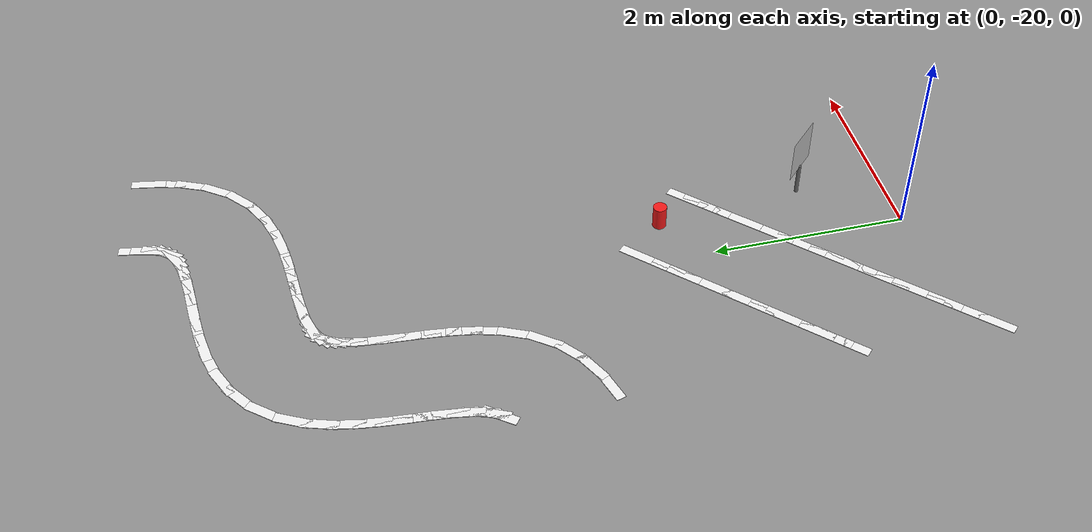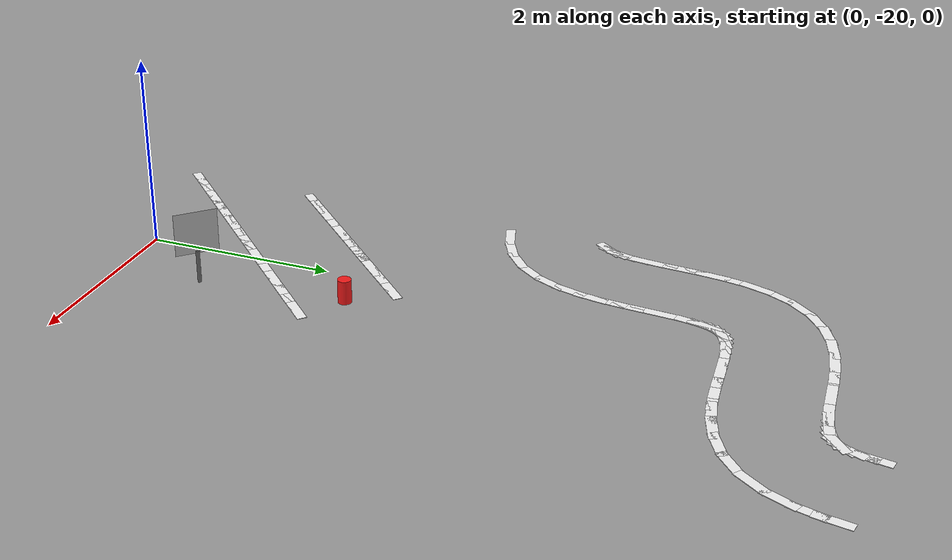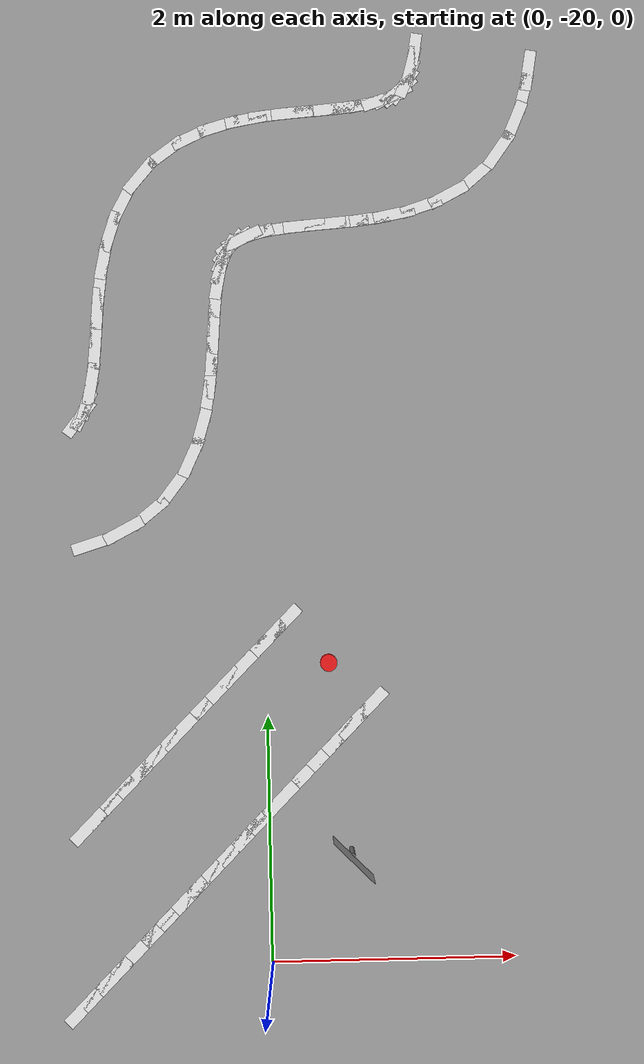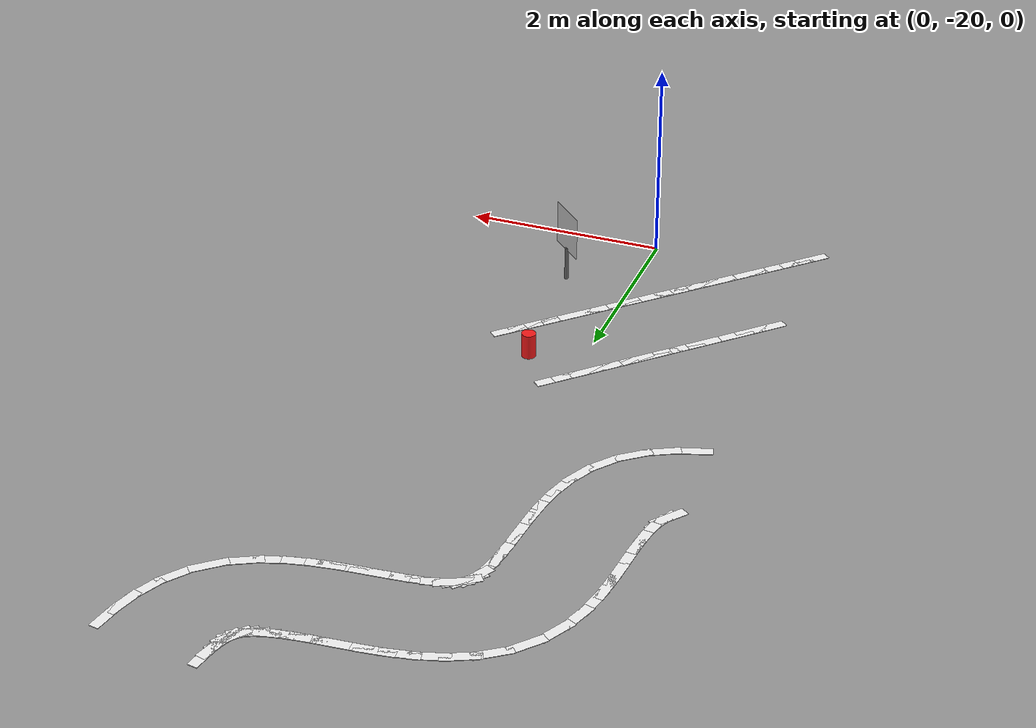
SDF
<sdf version="1.7">
 <world name="cone_lane">
  <model name="ground_plane">
   <static>true</static>
   <link name="link">
    <collision name="collision">
     <geometry><plane><normal>0 0 1</normal><size>150 150</size></plane></geometry>
     <surface><friction><ode><mu>1.0</mu></ode></friction></surface>
    </collision>
   </link>
  </model>
  <model name="line_L149">
   <static>true</static>
   <pose>2.367 -12.498 0.0030 0 0 -1.7463</pose>
   <link name="link">
    <visual name="v">
     <geometry><box><size>0.360 0.100 0.005</size></box></geometry>
     <material>
      <ambient>0.85 0.85 0.85 1</ambient>
      <diffuse>0.95 0.95 0.95 1</diffuse>
      <specular>0.1 0.1 0.1 1</specular>
      <emissive>0.7 0.7 0.7 1</emissive>
     </material>
    </visual>
   </link>
  </model>
  <model name="line_L150">
   <static>true</static>
   <pose>2.321 -12.705 0.0030 0 0 -1.8372</pose>
   <link name="link">
    <visual name="v">
     <geometry><box><size>0.360 0.100 0.005</size></box></geometry>
     <material>
      <ambient>0.85 0.85 0.85 1</ambient>
      <diffuse>0.95 0.95 0.95 1</diffuse>
      <specular>0.1 0.1 0.1 1</specular>
      <emissive>0.7 0.7 0.7 1</emissive>
     </material>
    </visual>
   </link>
  </model>
  <model name="line_L151">
   <static>true</static>
   <pose>2.239 -12.941 0.0030 0 0 -1.9825</pose>
   <link name="link">
    <visual name="v">
     <geometry><box><size>0.360 0.100 0.005</size></box></geometry>
     <material>
      <ambient>0.85 0.85 0.85 1</ambient>
      <diffuse>0.95 0.95 0.95 1</diffuse>
      <specular>0.1 0.1 0.1 1</specular>
      <emissive>0.7 0.7 0.7 1</emissive>
     </material>
    </visual>
   </link>
  </model>
  <model name="line_L152">
   <static>true</static>
   <pose>2.094 -13.196 0.0030 0 0 -2.1957</pose>
   <link name="link">
    <visual name="v">
     <geometry><box><size>0.360 0.100 0.005</size></box></geometry>
     <material>
      <ambient>0.85 0.85 0.85 1</ambient>
      <diffuse>0.95 0.95 0.95 1</diffuse>
      <specular>0.1 0.1 0.1 1</specular>
      <emissive>0.7 0.7 0.7 1</emissive>
     </material>
    </visual>
   </link>
  </model>
  <model name="line_L153">
   <static>true</static>
   <pose>1.890 -13.417 0.0030 0 0 -2.4373</pose>
   <link name="link">
    <visual name="v">
     <geometry><box><size>0.360 0.100 0.005</size></box></geometry>
     <material>
      <ambient>0.85 0.85 0.85 1</ambient>
      <diffuse>0.95 0.95 0.95 1</diffuse>
      <specular>0.1 0.1 0.1 1</specular>
      <emissive>0.7 0.7 0.7 1</emissive>
     </material>
    </visual>
   </link>
  </model>
  <model name="line_L154">
   <static>true</static>
   <pose>1.644 -13.582 0.0030 0 0 -2.6641</pose>
   <link name="link">
    <visual name="v">
     <geometry><box><size>0.360 0.100 0.005</size></box></geometry>
     <material>
      <ambient>0.85 0.85 0.85 1</ambient>
      <diffuse>0.95 0.95 0.95 1</diffuse>
      <specular>0.1 0.1 0.1 1</specular>
      <emissive>0.7 0.7 0.7 1</emissive>
     </material>
    </visual>
   </link>
  </model>
  <model name="line_L155">
   <static>true</static>
   <pose>1.409 -13.679 0.0030 0 0 -2.8260</pose>
   <link name="link">
    <visual name="v">
     <geometry><box><size>0.360 0.100 0.005</size></box></geometry>
     <material>
      <ambient>0.85 0.85 0.85 1</ambient>
      <diffuse>0.95 0.95 0.95 1</diffuse>
      <specular>0.1 0.1 0.1 1</specular>
      <emissive>0.7 0.7 0.7 1</emissive>
     </material>
    </visual>
   </link>
  </model>
  <model name="line_L156">
   <static>true</static>
   <pose>1.172 -13.741 0.0030 0 0 -2.9434</pose>
   <link name="link">
    <visual name="v">
     <geometry><box><size>0.360 0.100 0.005</size></box></geometry>
     <material>
      <ambient>0.85 0.85 0.85 1</ambient>
      <diffuse>0.95 0.95 0.95 1</diffuse>
      <specular>0.1 0.1 0.1 1</specular>
      <emissive>0.7 0.7 0.7 1</emissive>
     </material>
    </visual>
   </link>
  </model>
  <model name="line_L157">
   <static>true</static>
   <pose>0.968 -13.774 0.0030 0 0 -3.0122</pose>
   <link name="link">
    <visual name="v">
     <geometry><box><size>0.360 0.100 0.005</size></box></geometry>
     <material>
      <ambient>0.85 0.85 0.85 1</ambient>
      <diffuse>0.95 0.95 0.95 1</diffuse>
      <specular>0.1 0.1 0.1 1</specular>
      <emissive>0.7 0.7 0.7 1</emissive>
     </material>
    </visual>
   </link>
  </model>
  <model name="line_L158">
   <static>true</static>
   <pose>0.769 -13.795 0.0030 0 0 -3.0529</pose>
   <link name="link">
    <visual name="v">
     <geometry><box><size>0.360 0.100 0.005</size></box></geometry>
     <material>
      <ambient>0.85 0.85 0.85 1</ambient>
      <diffuse>0.95 0.95 0.95 1</diffuse>
      <specular>0.1 0.1 0.1 1</specular>
      <emissive>0.7 0.7 0.7 1</emissive>
     </material>
    </visual>
   </link>
  </model>
  <model name="line_L159">
   <static>true</static>
   <pose>0.578 -13.810 0.0030 0 0 -3.0684</pose>
   <link name="link">
    <visual name="v">
     <geometry><box><size>0.360 0.100 0.005</size></box></geometry>
     <material>
      <ambient>0.85 0.85 0.85 1</ambient>
      <diffuse>0.95 0.95 0.95 1</diffuse>
      <specular>0.1 0.1 0.1 1</specular>
      <emissive>0.7 0.7 0.7 1</emissive>
     </material>
    </visual>
   </link>
  </model>
  <model name="line_L160">
   <static>true</static>
   <pose>0.398 -13.824 0.0030 0 0 -3.0598</pose>
   <link name="link">
    <visual name="v">
     <geometry><box><size>0.360 0.100 0.005</size></box></geometry>
     <material>
      <ambient>0.85 0.85 0.85 1</ambient>
      <diffuse>0.95 0.95 0.95 1</diffuse>
      <specular>0.1 0.1 0.1 1</specular>
      <emissive>0.7 0.7 0.7 1</emissive>
     </material>
    </visual>
   </link>
  </model>
  <model name="line_L161">
   <static>true</static>
   <pose>0.234 -13.840 0.0030 0 0 -3.0265</pose>
   <link name="link">
    <visual name="v">
     <geometry><box><size>0.360 0.100 0.005</size></box></geometry>
     <material>
      <ambient>0.85 0.85 0.85 1</ambient>
      <diffuse>0.95 0.95 0.95 1</diffuse>
      <specular>0.1 0.1 0.1 1</specular>
      <emissive>0.7 0.7 0.7 1</emissive>
     </material>
    </visual>
   </link>
  </model>
  <model name="line_L162">
   <static>true</static>
   <pose>0.091 -13.860 0.0030 0 0 -2.9661</pose>
   <link name="link">
    <visual name="v">
     <geometry><box><size>0.360 0.100 0.005</size></box></geometry>
     <material>
      <ambient>0.85 0.85 0.85 1</ambient>
      <diffuse>0.95 0.95 0.95 1</diffuse>
      <specular>0.1 0.1 0.1 1</specular>
      <emissive>0.7 0.7 0.7 1</emissive>
     </material>
    </visual>
   </link>
  </model>
  <model name="line_L163">
   <static>true</static>
   <pose>-0.042 -13.890 0.0030 0 0 -2.8595</pose>
   <link name="link">
    <visual name="v">
     <geometry><box><size>0.360 0.100 0.005</size></box></geometry>
     <material>
      <ambient>0.85 0.85 0.85 1</ambient>
      <diffuse>0.95 0.95 0.95 1</diffuse>
      <specular>0.1 0.1 0.1 1</specular>
      <emissive>0.7 0.7 0.7 1</emissive>
     </material>
    </visual>
   </link>
  </model>
  <model name="line_L164">
   <static>true</static>
   <pose>-0.137 -13.925 0.0030 0 0 -2.7086</pose>
   <link name="link">
    <visual name="v">
     <geometry><box><size>0.360 0.100 0.005</size></box></geometry>
     <material>
      <ambient>0.85 0.85 0.85 1</ambient>
      <diffuse>0.95 0.95 0.95 1</diffuse>
      <specular>0.1 0.1 0.1 1</specular>
      <emissive>0.7 0.7 0.7 1</emissive>
     </material>
    </visual>
   </link>
  </model>
  <model name="line_L165">
   <static>true</static>
   <pose>-0.197 -13.959 0.0030 0 0 -2.5167</pose>
   <link name="link">
    <visual name="v">
     <geometry><box><size>0.360 0.100 0.005</size></box></geometry>
     <material>
      <ambient>0.85 0.85 0.85 1</ambient>
      <diffuse>0.95 0.95 0.95 1</diffuse>
      <specular>0.1 0.1 0.1 1</specular>
      <emissive>0.7 0.7 0.7 1</emissive>
     </material>
    </visual>
   </link>
  </model>
  <model name="line_L166">
   <static>true</static>
   <pose>-0.241 -14.000 0.0030 0 0 -2.2751</pose>
   <link name="link">
    <visual name="v">
     <geometry><box><size>0.360 0.100 0.005</size></box></geometry>
     <material>
      <ambient>0.85 0.85 0.85 1</ambient>
      <diffuse>0.95 0.95 0.95 1</diffuse>
      <specular>0.1 0.1 0.1 1</specular>
      <emissive>0.7 0.7 0.7 1</emissive>
     </material>
    </visual>
   </link>
  </model>
  <model name="line_L167">
   <static>true</static>
   <pose>-0.280 -14.059 0.0030 0 0 -2.0483</pose>
   <link name="link">
    <visual name="v">
     <geometry><box><size>0.360 0.100 0.005</size></box></geometry>
     <material>
      <ambient>0.85 0.85 0.85 1</ambient>
      <diffuse>0.95 0.95 0.95 1</diffuse>
      <specular>0.1 0.1 0.1 1</specular>
      <emissive>0.7 0.7 0.7 1</emissive>
     </material>
    </visual>
   </link>
  </model>
  <model name="line_L168">
   <static>true</static>
   <pose>-0.315 -14.144 0.0030 0 0 -1.8864</pose>
   <link name="link">
    <visual name="v">
     <geometry><box><size>0.360 0.100 0.005</size></box></geometry>
     <material>
      <ambient>0.85 0.85 0.85 1</ambient>
      <diffuse>0.95 0.95 0.95 1</diffuse>
      <specular>0.1 0.1 0.1 1</specular>
      <emissive>0.7 0.7 0.7 1</emissive>
     </material>
    </visual>
   </link>
  </model>
  <model name="line_L169">
   <static>true</static>
   <pose>-0.346 -14.267 0.0030 0 0 -1.7690</pose>
   <link name="link">
    <visual name="v">
     <geometry><box><size>0.360 0.100 0.005</size></box></geometry>
     <material>
      <ambient>0.85 0.85 0.85 1</ambient>
      <diffuse>0.95 0.95 0.95 1</diffuse>
      <specular>0.1 0.1 0.1 1</specular>
      <emissive>0.7 0.7 0.7 1</emissive>
     </material>
    </visual>
   </link>
  </model>
  <model name="line_L170">
   <static>true</static>
   <pose>-0.371 -14.425 0.0030 0 0 -1.6928</pose>
   <link name="link">
    <visual name="v">
     <geometry><box><size>0.360 0.100 0.005</size></box></geometry>
     <material>
      <ambient>0.85 0.85 0.85 1</ambient>
      <diffuse>0.95 0.95 0.95 1</diffuse>
      <specular>0.1 0.1 0.1 1</specular>
      <emissive>0.7 0.7 0.7 1</emissive>
     </material>
    </visual>
   </link>
  </model>
  <model name="line_L171">
   <static>true</static>
   <pose>-0.387 -14.587 0.0030 0 0 -1.6558</pose>
   <link name="link">
    <visual name="v">
     <geometry><box><size>0.360 0.100 0.005</size></box></geometry>
     <material>
      <ambient>0.85 0.85 0.85 1</ambient>
      <diffuse>0.95 0.95 0.95 1</diffuse>
      <specular>0.1 0.1 0.1 1</specular>
      <emissive>0.7 0.7 0.7 1</emissive>
     </material>
    </visual>
   </link>
  </model>
  <model name="line_L172">
   <static>true</static>
   <pose>-0.399 -14.738 0.0030 0 0 -1.6440</pose>
   <link name="link">
    <visual name="v">
     <geometry><box><size>0.360 0.100 0.005</size></box></geometry>
     <material>
      <ambient>0.85 0.85 0.85 1</ambient>
      <diffuse>0.95 0.95 0.95 1</diffuse>
      <specular>0.1 0.1 0.1 1</specular>
      <emissive>0.7 0.7 0.7 1</emissive>
     </material>
    </visual>
   </link>
  </model>
  <model name="line_L173">
   <static>true</static>
   <pose>-0.413 -14.926 0.0030 0 0 -1.6526</pose>
   <link name="link">
    <visual name="v">
     <geometry><box><size>0.360 0.100 0.005</size></box></geometry>
     <material>
      <ambient>0.85 0.85 0.85 1</ambient>
      <diffuse>0.95 0.95 0.95 1</diffuse>
      <specular>0.1 0.1 0.1 1</specular>
      <emissive>0.7 0.7 0.7 1</emissive>
     </material>
    </visual>
   </link>
  </model>
  <model name="line_L174">
   <static>true</static>
   <pose>-0.432 -15.124 0.0030 0 0 -1.6859</pose>
   <link name="link">
    <visual name="v">
     <geometry><box><size>0.360 0.100 0.005</size></box></geometry>
     <material>
      <ambient>0.85 0.85 0.85 1</ambient>
      <diffuse>0.95 0.95 0.95 1</diffuse>
      <specular>0.1 0.1 0.1 1</specular>
      <emissive>0.7 0.7 0.7 1</emissive>
     </material>
    </visual>
   </link>
  </model>
  <model name="line_L175">
   <static>true</static>
   <pose>-0.461 -15.327 0.0030 0 0 -1.7463</pose>
   <link name="link">
    <visual name="v">
     <geometry><box><size>0.360 0.100 0.005</size></box></geometry>
     <material>
      <ambient>0.85 0.85 0.85 1</ambient>
      <diffuse>0.95 0.95 0.95 1</diffuse>
      <specular>0.1 0.1 0.1 1</specular>
      <emissive>0.7 0.7 0.7 1</emissive>
     </material>
    </visual>
   </link>
  </model>
  <model name="line_L176">
   <static>true</static>
   <pose>-0.516 -15.563 0.0030 0 0 -1.8529</pose>
   <link name="link">
    <visual name="v">
     <geometry><box><size>0.360 0.100 0.005</size></box></geometry>
     <material>
      <ambient>0.85 0.85 0.85 1</ambient>
      <diffuse>0.95 0.95 0.95 1</diffuse>
      <specular>0.1 0.1 0.1 1</specular>
      <emissive>0.7 0.7 0.7 1</emissive>
     </material>
    </visual>
   </link>
  </model>
  <model name="line_L177">
   <static>true</static>
   <pose>-0.603 -15.799 0.0030 0 0 -2.0038</pose>
   <link name="link">
    <visual name="v">
     <geometry><box><size>0.360 0.100 0.005</size></box></geometry>
     <material>
      <ambient>0.85 0.85 0.85 1</ambient>
      <diffuse>0.95 0.95 0.95 1</diffuse>
      <specular>0.1 0.1 0.1 1</specular>
      <emissive>0.7 0.7 0.7 1</emissive>
     </material>
    </visual>
   </link>
  </model>
  <model name="line_L178">
   <static>true</static>
   <pose>-0.754 -16.051 0.0030 0 0 -2.2219</pose>
   <link name="link">
    <visual name="v">
     <geometry><box><size>0.360 0.100 0.005</size></box></geometry>
     <material>
      <ambient>0.85 0.85 0.85 1</ambient>
      <diffuse>0.95 0.95 0.95 1</diffuse>
      <specular>0.1 0.1 0.1 1</specular>
      <emissive>0.7 0.7 0.7 1</emissive>
     </material>
    </visual>
   </link>
  </model>
  <model name="line_L179">
   <static>true</static>
   <pose>-0.964 -16.267 0.0030 0 0 -2.4640</pose>
   <link name="link">
    <visual name="v">
     <geometry><box><size>0.360 0.100 0.005</size></box></geometry>
     <material>
      <ambient>0.85 0.85 0.85 1</ambient>
      <diffuse>0.95 0.95 0.95 1</diffuse>
      <specular>0.1 0.1 0.1 1</specular>
      <emissive>0.7 0.7 0.7 1</emissive>
     </material>
    </visual>
   </link>
  </model>
  <model name="line_L180">
   <static>true</static>
   <pose>-1.185 -16.410 0.0030 0 0 -2.6641</pose>
   <link name="link">
    <visual name="v">
     <geometry><box><size>0.360 0.100 0.005</size></box></geometry>
     <material>
      <ambient>0.85 0.85 0.85 1</ambient>
      <diffuse>0.95 0.95 0.95 1</diffuse>
      <specular>0.1 0.1 0.1 1</specular>
      <emissive>0.7 0.7 0.7 1</emissive>
     </material>
    </visual>
   </link>
  </model>
  <model name="line_L181">
   <static>true</static>
   <pose>-1.449 -16.517 0.0030 0 0 -2.8431</pose>
   <link name="link">
    <visual name="v">
     <geometry><box><size>0.360 0.100 0.005</size></box></geometry>
     <material>
      <ambient>0.85 0.85 0.85 1</ambient>
      <diffuse>0.95 0.95 0.95 1</diffuse>
      <specular>0.1 0.1 0.1 1</specular>
      <emissive>0.7 0.7 0.7 1</emissive>
     </material>
    </visual>
   </link>
  </model>
  <model name="line_L282">
   <static>true</static>
   <pose>-1.508 -18.872 0.0030 0 0 0.7854</pose>
   <link name="link">
    <visual name="v">
     <geometry><box><size>0.360 0.100 0.005</size></box></geometry>
     <material>
      <ambient>0.85 0.85 0.85 1</ambient>
      <diffuse>0.95 0.95 0.95 1</diffuse>
      <specular>0.1 0.1 0.1 1</specular>
      <emissive>0.7 0.7 0.7 1</emissive>
     </material>
    </visual>
   </link>
  </model>
  <model name="line_L283">
   <static>true</static>
   <pose>-1.380 -18.744 0.0030 0 0 0.7854</pose>
   <link name="link">
    <visual name="v">
     <geometry><box><size>0.360 0.100 0.005</size></box></geometry>
     <material>
      <ambient>0.85 0.85 0.85 1</ambient>
      <diffuse>0.95 0.95 0.95 1</diffuse>
      <specular>0.1 0.1 0.1 1</specular>
      <emissive>0.7 0.7 0.7 1</emissive>
     </material>
    </visual>
   </link>
  </model>
  <model name="line_L284">
   <static>true</static>
   <pose>-1.253 -18.617 0.0030 0 0 0.7854</pose>
   <link name="link">
    <visual name="v">
     <geometry><box><size>0.360 0.100 0.005</size></box></geometry>
     <material>
      <ambient>0.85 0.85 0.85 1</ambient>
      <diffuse>0.95 0.95 0.95 1</diffuse>
      <specular>0.1 0.1 0.1 1</specular>
      <emissive>0.7 0.7 0.7 1</emissive>
     </material>
    </visual>
   </link>
  </model>
  <model name="line_L285">
   <static>true</static>
   <pose>-1.126 -18.490 0.0030 0 0 0.7854</pose>
   <link name="link">
    <visual name="v">
     <geometry><box><size>0.360 0.100 0.005</size></box></geometry>
     <material>
      <ambient>0.85 0.85 0.85 1</ambient>
      <diffuse>0.95 0.95 0.95 1</diffuse>
      <specular>0.1 0.1 0.1 1</specular>
      <emissive>0.7 0.7 0.7 1</emissive>
     </material>
    </visual>
   </link>
  </model>
  <model name="line_L286">
   <static>true</static>
   <pose>-0.998 -18.362 0.0030 0 0 0.7854</pose>
   <link name="link">
    <visual name="v">
     <geometry><box><size>0.360 0.100 0.005</size></box></geometry>
     <material>
      <ambient>0.85 0.85 0.85 1</ambient>
      <diffuse>0.95 0.95 0.95 1</diffuse>
      <specular>0.1 0.1 0.1 1</specular>
      <emissive>0.7 0.7 0.7 1</emissive>
     </material>
    </visual>
   </link>
  </model>
  <model name="line_L287">
   <static>true</static>
   <pose>-0.871 -18.235 0.0030 0 0 0.7854</pose>
   <link name="link">
    <visual name="v">
     <geometry><box><size>0.360 0.100 0.005</size></box></geometry>
     <material>
      <ambient>0.85 0.85 0.85 1</ambient>
      <diffuse>0.95 0.95 0.95 1</diffuse>
      <specular>0.1 0.1 0.1 1</specular>
      <emissive>0.7 0.7 0.7 1</emissive>
     </material>
    </visual>
   </link>
  </model>
  <model name="line_L288">
   <static>true</static>
   <pose>-0.744 -18.108 0.0030 0 0 0.7854</pose>
   <link name="link">
    <visual name="v">
     <geometry><box><size>0.360 0.100 0.005</size></box></geometry>
     <material>
      <ambient>0.85 0.85 0.85 1</ambient>
      <diffuse>0.95 0.95 0.95 1</diffuse>
      <specular>0.1 0.1 0.1 1</specular>
      <emissive>0.7 0.7 0.7 1</emissive>
     </material>
    </visual>
   </link>
  </model>
  <model name="line_L289">
   <static>true</static>
   <pose>-0.617 -17.981 0.0030 0 0 0.7854</pose>
   <link name="link">
    <visual name="v">
     <geometry><box><size>0.360 0.100 0.005</size></box></geometry>
     <material>
      <ambient>0.85 0.85 0.85 1</ambient>
      <diffuse>0.95 0.95 0.95 1</diffuse>
      <specular>0.1 0.1 0.1 1</specular>
      <emissive>0.7 0.7 0.7 1</emissive>
     </material>
    </visual>
   </link>
  </model>
  <model name="line_L290">
   <static>true</static>
   <pose>-0.489 -17.853 0.0030 0 0 0.7854</pose>
   <link name="link">
    <visual name="v">
     <geometry><box><size>0.360 0.100 0.005</size></box></geometry>
     <material>
      <ambient>0.85 0.85 0.85 1</ambient>
      <diffuse>0.95 0.95 0.95 1</diffuse>
      <specular>0.1 0.1 0.1 1</specular>
      <emissive>0.7 0.7 0.7 1</emissive>
     </material>
    </visual>
   </link>
  </model>
  <model name="line_L291">
   <static>true</static>
   <pose>-0.362 -17.726 0.0030 0 0 0.7854</pose>
   <link name="link">
    <visual name="v">
     <geometry><box><size>0.360 0.100 0.005</size></box></geometry>
     <material>
      <ambient>0.85 0.85 0.85 1</ambient>
      <diffuse>0.95 0.95 0.95 1</diffuse>
      <specular>0.1 0.1 0.1 1</specular>
      <emissive>0.7 0.7 0.7 1</emissive>
     </material>
    </visual>
   </link>
  </model>
  <model name="line_L292">
   <static>true</static>
   <pose>-0.235 -17.599 0.0030 0 0 0.7854</pose>
   <link name="link">
    <visual name="v">
     <geometry><box><size>0.360 0.100 0.005</size></box></geometry>
     <material>
      <ambient>0.85 0.85 0.85 1</ambient>
      <diffuse>0.95 0.95 0.95 1</diffuse>
      <specular>0.1 0.1 0.1 1</specular>
      <emissive>0.7 0.7 0.7 1</emissive>
     </material>
    </visual>
   </link>
  </model>
  <model name="line_L293">
   <static>true</static>
   <pose>-0.108 -17.471 0.0030 0 0 0.7854</pose>
   <link name="link">
    <visual name="v">
     <geometry><box><size>0.360 0.100 0.005</size></box></geometry>
     <material>
      <ambient>0.85 0.85 0.85 1</ambient>
      <diffuse>0.95 0.95 0.95 1</diffuse>
      <specular>0.1 0.1 0.1 1</specular>
      <emissive>0.7 0.7 0.7 1</emissive>
     </material>
    </visual>
   </link>
  </model>
  <model name="line_L294">
   <static>true</static>
   <pose>0.020 -17.344 0.0030 0 0 0.7854</pose>
   <link name="link">
    <visual name="v">
     <geometry><box><size>0.360 0.100 0.005</size></box></geometry>
     <material>
      <ambient>0.85 0.85 0.85 1</ambient>
      <diffuse>0.95 0.95 0.95 1</diffuse>
      <specular>0.1 0.1 0.1 1</specular>
      <emissive>0.7 0.7 0.7 1</emissive>
     </material>
    </visual>
   </link>
  </model>
  <model name="line_L295">
   <static>true</static>
   <pose>0.147 -17.217 0.0030 0 0 0.7854</pose>
   <link name="link">
    <visual name="v">
     <geometry><box><size>0.360 0.100 0.005</size></box></geometry>
     <material>
      <ambient>0.85 0.85 0.85 1</ambient>
      <diffuse>0.95 0.95 0.95 1</diffuse>
      <specular>0.1 0.1 0.1 1</specular>
      <emissive>0.7 0.7 0.7 1</emissive>
     </material>
    </visual>
   </link>
  </model>
  <model name="line_R149">
   <static>true</static>
   <pose>1.382 -12.324 0.0030 0 0 -1.7463</pose>
   <link name="link">
    <visual name="v">
     <geometry><box><size>0.360 0.100 0.005</size></box></geometry>
     <material>
      <ambient>0.85 0.85 0.85 1</ambient>
      <diffuse>0.95 0.95 0.95 1</diffuse>
      <specular>0.1 0.1 0.1 1</specular>
      <emissive>0.7 0.7 0.7 1</emissive>
     </material>
    </visual>
   </link>
  </model>
  <model name="line_R150">
   <static>true</static>
   <pose>1.356 -12.441 0.0030 0 0 -1.8372</pose>
   <link name="link">
    <visual name="v">
     <geometry><box><size>0.360 0.100 0.005</size></box></geometry>
     <material>
      <ambient>0.85 0.85 0.85 1</ambient>
      <diffuse>0.95 0.95 0.95 1</diffuse>
      <specular>0.1 0.1 0.1 1</specular>
      <emissive>0.7 0.7 0.7 1</emissive>
     </material>
    </visual>
   </link>
  </model>
  <model name="line_R151">
   <static>true</static>
   <pose>1.322 -12.541 0.0030 0 0 -1.9825</pose>
   <link name="link">
    <visual name="v">
     <geometry><box><size>0.360 0.100 0.005</size></box></geometry>
     <material>
      <ambient>0.85 0.85 0.85 1</ambient>
      <diffuse>0.95 0.95 0.95 1</diffuse>
      <specular>0.1 0.1 0.1 1</specular>
      <emissive>0.7 0.7 0.7 1</emissive>
     </material>
    </visual>
   </link>
  </model>
  <model name="line_R152">
   <static>true</static>
   <pose>1.283 -12.611 0.0030 0 0 -2.1957</pose>
   <link name="link">
    <visual name="v">
     <geometry><box><size>0.360 0.100 0.005</size></box></geometry>
     <material>
      <ambient>0.85 0.85 0.85 1</ambient>
      <diffuse>0.95 0.95 0.95 1</diffuse>
      <specular>0.1 0.1 0.1 1</specular>
      <emissive>0.7 0.7 0.7 1</emissive>
     </material>
    </visual>
   </link>
  </model>
  <model name="line_R153">
   <static>true</static>
   <pose>1.243 -12.655 0.0030 0 0 -2.4373</pose>
   <link name="link">
    <visual name="v">
     <geometry><box><size>0.360 0.100 0.005</size></box></geometry>
     <material>
      <ambient>0.85 0.85 0.85 1</ambient>
      <diffuse>0.95 0.95 0.95 1</diffuse>
      <specular>0.1 0.1 0.1 1</specular>
      <emissive>0.7 0.7 0.7 1</emissive>
     </material>
    </visual>
   </link>
  </model>
  <model name="line_R154">
   <static>true</static>
   <pose>1.184 -12.694 0.0030 0 0 -2.6641</pose>
   <link name="link">
    <visual name="v">
     <geometry><box><size>0.360 0.100 0.005</size></box></geometry>
     <material>
      <ambient>0.85 0.85 0.85 1</ambient>
      <diffuse>0.95 0.95 0.95 1</diffuse>
      <specular>0.1 0.1 0.1 1</specular>
      <emissive>0.7 0.7 0.7 1</emissive>
     </material>
    </visual>
   </link>
  </model>
  <model name="line_R155">
   <static>true</static>
   <pose>1.098 -12.729 0.0030 0 0 -2.8260</pose>
   <link name="link">
    <visual name="v">
     <geometry><box><size>0.360 0.100 0.005</size></box></geometry>
     <material>
      <ambient>0.85 0.85 0.85 1</ambient>
      <diffuse>0.95 0.95 0.95 1</diffuse>
      <specular>0.1 0.1 0.1 1</specular>
      <emissive>0.7 0.7 0.7 1</emissive>
     </material>
    </visual>
   </link>
  </model>
  <model name="line_R156">
   <static>true</static>
   <pose>0.975 -12.760 0.0030 0 0 -2.9434</pose>
   <link name="link">
    <visual name="v">
     <geometry><box><size>0.360 0.100 0.005</size></box></geometry>
     <material>
      <ambient>0.85 0.85 0.85 1</ambient>
      <diffuse>0.95 0.95 0.95 1</diffuse>
      <specular>0.1 0.1 0.1 1</specular>
      <emissive>0.7 0.7 0.7 1</emissive>
     </material>
    </visual>
   </link>
  </model>
  <model name="line_R157">
   <static>true</static>
   <pose>0.839 -12.782 0.0030 0 0 -3.0122</pose>
   <link name="link">
    <visual name="v">
     <geometry><box><size>0.360 0.100 0.005</size></box></geometry>
     <material>
      <ambient>0.85 0.85 0.85 1</ambient>
      <diffuse>0.95 0.95 0.95 1</diffuse>
      <specular>0.1 0.1 0.1 1</specular>
      <emissive>0.7 0.7 0.7 1</emissive>
     </material>
    </visual>
   </link>
  </model>
  <model name="line_R158">
   <static>true</static>
   <pose>0.680 -12.799 0.0030 0 0 -3.0529</pose>
   <link name="link">
    <visual name="v">
     <geometry><box><size>0.360 0.100 0.005</size></box></geometry>
     <material>
      <ambient>0.85 0.85 0.85 1</ambient>
      <diffuse>0.95 0.95 0.95 1</diffuse>
      <specular>0.1 0.1 0.1 1</specular>
      <emissive>0.7 0.7 0.7 1</emissive>
     </material>
    </visual>
   </link>
  </model>
  <model name="line_R159">
   <static>true</static>
   <pose>0.505 -12.813 0.0030 0 0 -3.0684</pose>
   <link name="link">
    <visual name="v">
     <geometry><box><size>0.360 0.100 0.005</size></box></geometry>
     <material>
      <ambient>0.85 0.85 0.85 1</ambient>
      <diffuse>0.95 0.95 0.95 1</diffuse>
      <specular>0.1 0.1 0.1 1</specular>
      <emissive>0.7 0.7 0.7 1</emissive>
     </material>
    </visual>
   </link>
  </model>
  <model name="line_R160">
   <static>true</static>
   <pose>0.316 -12.827 0.0030 0 0 -3.0598</pose>
   <link name="link">
    <visual name="v">
     <geometry><box><size>0.360 0.100 0.005</size></box></geometry>
     <material>
      <ambient>0.85 0.85 0.85 1</ambient>
      <diffuse>0.95 0.95 0.95 1</diffuse>
      <specular>0.1 0.1 0.1 1</specular>
      <emissive>0.7 0.7 0.7 1</emissive>
     </material>
    </visual>
   </link>
  </model>
  <model name="line_R161">
   <static>true</static>
   <pose>0.119 -12.846 0.0030 0 0 -3.0265</pose>
   <link name="link">
    <visual name="v">
     <geometry><box><size>0.360 0.100 0.005</size></box></geometry>
     <material>
      <ambient>0.85 0.85 0.85 1</ambient>
      <diffuse>0.95 0.95 0.95 1</diffuse>
      <specular>0.1 0.1 0.1 1</specular>
      <emissive>0.7 0.7 0.7 1</emissive>
     </material>
    </visual>
   </link>
  </model>
  <model name="line_R162">
   <static>true</static>
   <pose>-0.084 -12.876 0.0030 0 0 -2.9661</pose>
   <link name="link">
    <visual name="v">
     <geometry><box><size>0.360 0.100 0.005</size></box></geometry>
     <material>
      <ambient>0.85 0.85 0.85 1</ambient>
      <diffuse>0.95 0.95 0.95 1</diffuse>
      <specular>0.1 0.1 0.1 1</specular>
      <emissive>0.7 0.7 0.7 1</emissive>
     </material>
    </visual>
   </link>
  </model>
  <model name="line_R163">
   <static>true</static>
   <pose>-0.320 -12.930 0.0030 0 0 -2.8595</pose>
   <link name="link">
    <visual name="v">
     <geometry><box><size>0.360 0.100 0.005</size></box></geometry>
     <material>
      <ambient>0.85 0.85 0.85 1</ambient>
      <diffuse>0.95 0.95 0.95 1</diffuse>
      <specular>0.1 0.1 0.1 1</specular>
      <emissive>0.7 0.7 0.7 1</emissive>
     </material>
    </visual>
   </link>
  </model>
  <model name="line_R164">
   <static>true</static>
   <pose>-0.556 -13.017 0.0030 0 0 -2.7086</pose>
   <link name="link">
    <visual name="v">
     <geometry><box><size>0.360 0.100 0.005</size></box></geometry>
     <material>
      <ambient>0.85 0.85 0.85 1</ambient>
      <diffuse>0.95 0.95 0.95 1</diffuse>
      <specular>0.1 0.1 0.1 1</specular>
      <emissive>0.7 0.7 0.7 1</emissive>
     </material>
    </visual>
   </link>
  </model>
  <model name="line_R165">
   <static>true</static>
   <pose>-0.782 -13.148 0.0030 0 0 -2.5167</pose>
   <link name="link">
    <visual name="v">
     <geometry><box><size>0.360 0.100 0.005</size></box></geometry>
     <material>
      <ambient>0.85 0.85 0.85 1</ambient>
      <diffuse>0.95 0.95 0.95 1</diffuse>
      <specular>0.1 0.1 0.1 1</specular>
      <emissive>0.7 0.7 0.7 1</emissive>
     </material>
    </visual>
   </link>
  </model>
  <model name="line_R166">
   <static>true</static>
   <pose>-1.003 -13.352 0.0030 0 0 -2.2751</pose>
   <link name="link">
    <visual name="v">
     <geometry><box><size>0.360 0.100 0.005</size></box></geometry>
     <material>
      <ambient>0.85 0.85 0.85 1</ambient>
      <diffuse>0.95 0.95 0.95 1</diffuse>
      <specular>0.1 0.1 0.1 1</specular>
      <emissive>0.7 0.7 0.7 1</emissive>
     </material>
    </visual>
   </link>
  </model>
  <model name="line_R167">
   <static>true</static>
   <pose>-1.168 -13.599 0.0030 0 0 -2.0483</pose>
   <link name="link">
    <visual name="v">
     <geometry><box><size>0.360 0.100 0.005</size></box></geometry>
     <material>
      <ambient>0.85 0.85 0.85 1</ambient>
      <diffuse>0.95 0.95 0.95 1</diffuse>
      <specular>0.1 0.1 0.1 1</specular>
      <emissive>0.7 0.7 0.7 1</emissive>
     </material>
    </visual>
   </link>
  </model>
  <model name="line_R168">
   <static>true</static>
   <pose>-1.265 -13.834 0.0030 0 0 -1.8864</pose>
   <link name="link">
    <visual name="v">
     <geometry><box><size>0.360 0.100 0.005</size></box></geometry>
     <material>
      <ambient>0.85 0.85 0.85 1</ambient>
      <diffuse>0.95 0.95 0.95 1</diffuse>
      <specular>0.1 0.1 0.1 1</specular>
      <emissive>0.7 0.7 0.7 1</emissive>
     </material>
    </visual>
   </link>
  </model>
  <model name="line_R169">
   <static>true</static>
   <pose>-1.326 -14.070 0.0030 0 0 -1.7690</pose>
   <link name="link">
    <visual name="v">
     <geometry><box><size>0.360 0.100 0.005</size></box></geometry>
     <material>
      <ambient>0.85 0.85 0.85 1</ambient>
      <diffuse>0.95 0.95 0.95 1</diffuse>
      <specular>0.1 0.1 0.1 1</specular>
      <emissive>0.7 0.7 0.7 1</emissive>
     </material>
    </visual>
   </link>
  </model>
  <model name="line_R170">
   <static>true</static>
   <pose>-1.363 -14.304 0.0030 0 0 -1.6928</pose>
   <link name="link">
    <visual name="v">
     <geometry><box><size>0.360 0.100 0.005</size></box></geometry>
     <material>
      <ambient>0.85 0.85 0.85 1</ambient>
      <diffuse>0.95 0.95 0.95 1</diffuse>
      <specular>0.1 0.1 0.1 1</specular>
      <emissive>0.7 0.7 0.7 1</emissive>
     </material>
    </visual>
   </link>
  </model>
  <model name="line_R171">
   <static>true</static>
   <pose>-1.384 -14.502 0.0030 0 0 -1.6558</pose>
   <link name="link">
    <visual name="v">
     <geometry><box><size>0.360 0.100 0.005</size></box></geometry>
     <material>
      <ambient>0.85 0.85 0.85 1</ambient>
      <diffuse>0.95 0.95 0.95 1</diffuse>
      <specular>0.1 0.1 0.1 1</specular>
      <emissive>0.7 0.7 0.7 1</emissive>
     </material>
    </visual>
   </link>
  </model>
  <model name="line_R172">
   <static>true</static>
   <pose>-1.396 -14.665 0.0030 0 0 -1.6440</pose>
   <link name="link">
    <visual name="v">
     <geometry><box><size>0.360 0.100 0.005</size></box></geometry>
     <material>
      <ambient>0.85 0.85 0.85 1</ambient>
      <diffuse>0.95 0.95 0.95 1</diffuse>
      <specular>0.1 0.1 0.1 1</specular>
      <emissive>0.7 0.7 0.7 1</emissive>
     </material>
    </visual>
   </link>
  </model>
  <model name="line_R173">
   <static>true</static>
   <pose>-1.410 -14.845 0.0030 0 0 -1.6526</pose>
   <link name="link">
    <visual name="v">
     <geometry><box><size>0.360 0.100 0.005</size></box></geometry>
     <material>
      <ambient>0.85 0.85 0.85 1</ambient>
      <diffuse>0.95 0.95 0.95 1</diffuse>
      <specular>0.1 0.1 0.1 1</specular>
      <emissive>0.7 0.7 0.7 1</emissive>
     </material>
    </visual>
   </link>
  </model>
  <model name="line_R174">
   <static>true</static>
   <pose>-1.426 -15.009 0.0030 0 0 -1.6859</pose>
   <link name="link">
    <visual name="v">
     <geometry><box><size>0.360 0.100 0.005</size></box></geometry>
     <material>
      <ambient>0.85 0.85 0.85 1</ambient>
      <diffuse>0.95 0.95 0.95 1</diffuse>
      <specular>0.1 0.1 0.1 1</specular>
      <emissive>0.7 0.7 0.7 1</emissive>
     </material>
    </visual>
   </link>
  </model>
  <model name="line_R175">
   <static>true</static>
   <pose>-1.446 -15.152 0.0030 0 0 -1.7463</pose>
   <link name="link">
    <visual name="v">
     <geometry><box><size>0.360 0.100 0.005</size></box></geometry>
     <material>
      <ambient>0.85 0.85 0.85 1</ambient>
      <diffuse>0.95 0.95 0.95 1</diffuse>
      <specular>0.1 0.1 0.1 1</specular>
      <emissive>0.7 0.7 0.7 1</emissive>
     </material>
    </visual>
   </link>
  </model>
  <model name="line_R176">
   <static>true</static>
   <pose>-1.476 -15.284 0.0030 0 0 -1.8529</pose>
   <link name="link">
    <visual name="v">
     <geometry><box><size>0.360 0.100 0.005</size></box></geometry>
     <material>
      <ambient>0.85 0.85 0.85 1</ambient>
      <diffuse>0.95 0.95 0.95 1</diffuse>
      <specular>0.1 0.1 0.1 1</specular>
      <emissive>0.7 0.7 0.7 1</emissive>
     </material>
    </visual>
   </link>
  </model>
  <model name="line_R177">
   <static>true</static>
   <pose>-1.511 -15.379 0.0030 0 0 -2.0038</pose>
   <link name="link">
    <visual name="v">
     <geometry><box><size>0.360 0.100 0.005</size></box></geometry>
     <material>
      <ambient>0.85 0.85 0.85 1</ambient>
      <diffuse>0.95 0.95 0.95 1</diffuse>
      <specular>0.1 0.1 0.1 1</specular>
      <emissive>0.7 0.7 0.7 1</emissive>
     </material>
    </visual>
   </link>
  </model>
  <model name="line_R178">
   <static>true</static>
   <pose>-1.549 -15.445 0.0030 0 0 -2.2219</pose>
   <link name="link">
    <visual name="v">
     <geometry><box><size>0.360 0.100 0.005</size></box></geometry>
     <material>
      <ambient>0.85 0.85 0.85 1</ambient>
      <diffuse>0.95 0.95 0.95 1</diffuse>
      <specular>0.1 0.1 0.1 1</specular>
      <emissive>0.7 0.7 0.7 1</emissive>
     </material>
    </visual>
   </link>
  </model>
  <model name="line_R276">
   <static>true</static>
   <pose>-1.564 -20.342 0.0030 0 0 0.7854</pose>
   <link name="link">
    <visual name="v">
     <geometry><box><size>0.360 0.100 0.005</size></box></geometry>
     <material>
      <ambient>0.85 0.85 0.85 1</ambient>
      <diffuse>0.95 0.95 0.95 1</diffuse>
      <specular>0.1 0.1 0.1 1</specular>
      <emissive>0.7 0.7 0.7 1</emissive>
     </material>
    </visual>
   </link>
  </model>
  <model name="line_R277">
   <static>true</static>
   <pose>-1.437 -20.215 0.0030 0 0 0.7854</pose>
   <link name="link">
    <visual name="v">
     <geometry><box><size>0.360 0.100 0.005</size></box></geometry>
     <material>
      <ambient>0.85 0.85 0.85 1</ambient>
      <diffuse>0.95 0.95 0.95 1</diffuse>
      <specular>0.1 0.1 0.1 1</specular>
      <emissive>0.7 0.7 0.7 1</emissive>
     </material>
    </visual>
   </link>
  </model>
  <model name="line_R278">
   <static>true</static>
   <pose>-1.310 -20.088 0.0030 0 0 0.7854</pose>
   <link name="link">
    <visual name="v">
     <geometry><box><size>0.360 0.100 0.005</size></box></geometry>
     <material>
      <ambient>0.85 0.85 0.85 1</ambient>
      <diffuse>0.95 0.95 0.95 1</diffuse>
      <specular>0.1 0.1 0.1 1</specular>
      <emissive>0.7 0.7 0.7 1</emissive>
     </material>
    </visual>
   </link>
  </model>
  <model name="line_R279">
   <static>true</static>
   <pose>-1.182 -19.961 0.0030 0 0 0.7854</pose>
   <link name="link">
    <visual name="v">
     <geometry><box><size>0.360 0.100 0.005</size></box></geometry>
     <material>
      <ambient>0.85 0.85 0.85 1</ambient>
      <diffuse>0.95 0.95 0.95 1</diffuse>
      <specular>0.1 0.1 0.1 1</specular>
      <emissive>0.7 0.7 0.7 1</emissive>
     </material>
    </visual>
   </link>
  </model>
  <model name="line_R280">
   <static>true</static>
   <pose>-1.055 -19.833 0.0030 0 0 0.7854</pose>
   <link name="link">
    <visual name="v">
     <geometry><box><size>0.360 0.100 0.005</size></box></geometry>
     <material>
      <ambient>0.85 0.85 0.85 1</ambient>
      <diffuse>0.95 0.95 0.95 1</diffuse>
      <specular>0.1 0.1 0.1 1</specular>
      <emissive>0.7 0.7 0.7 1</emissive>
     </material>
    </visual>
   </link>
  </model>
  <model name="line_R281">
   <static>true</static>
   <pose>-0.928 -19.706 0.0030 0 0 0.7854</pose>
   <link name="link">
    <visual name="v">
     <geometry><box><size>0.360 0.100 0.005</size></box></geometry>
     <material>
      <ambient>0.85 0.85 0.85 1</ambient>
      <diffuse>0.95 0.95 0.95 1</diffuse>
      <specular>0.1 0.1 0.1 1</specular>
      <emissive>0.7 0.7 0.7 1</emissive>
     </material>
    </visual>
   </link>
  </model>
  <model name="line_R282">
   <static>true</static>
   <pose>-0.800 -19.579 0.0030 0 0 0.7854</pose>
   <link name="link">
    <visual name="v">
     <geometry><box><size>0.360 0.100 0.005</size></box></geometry>
     <material>
      <ambient>0.85 0.85 0.85 1</ambient>
      <diffuse>0.95 0.95 0.95 1</diffuse>
      <specular>0.1 0.1 0.1 1</specular>
      <emissive>0.7 0.7 0.7 1</emissive>
     </material>
    </visual>
   </link>
  </model>
  <model name="line_R283">
   <static>true</static>
   <pose>-0.673 -19.451 0.0030 0 0 0.7854</pose>
   <link name="link">
    <visual name="v">
     <geometry><box><size>0.360 0.100 0.005</size></box></geometry>
     <material>
      <ambient>0.85 0.85 0.85 1</ambient>
      <diffuse>0.95 0.95 0.95 1</diffuse>
      <specular>0.1 0.1 0.1 1</specular>
      <emissive>0.7 0.7 0.7 1</emissive>
     </material>
    </visual>
   </link>
  </model>
  <model name="line_R284">
   <static>true</static>
   <pose>-0.546 -19.324 0.0030 0 0 0.7854</pose>
   <link name="link">
    <visual name="v">
     <geometry><box><size>0.360 0.100 0.005</size></box></geometry>
     <material>
      <ambient>0.85 0.85 0.85 1</ambient>
      <diffuse>0.95 0.95 0.95 1</diffuse>
      <specular>0.1 0.1 0.1 1</specular>
      <emissive>0.7 0.7 0.7 1</emissive>
     </material>
    </visual>
   </link>
  </model>
  <model name="line_R285">
   <static>true</static>
   <pose>-0.419 -19.197 0.0030 0 0 0.7854</pose>
   <link name="link">
    <visual name="v">
     <geometry><box><size>0.360 0.100 0.005</size></box></geometry>
     <material>
      <ambient>0.85 0.85 0.85 1</ambient>
      <diffuse>0.95 0.95 0.95 1</diffuse>
      <specular>0.1 0.1 0.1 1</specular>
      <emissive>0.7 0.7 0.7 1</emissive>
     </material>
    </visual>
   </link>
  </model>
  <model name="line_R286">
   <static>true</static>
   <pose>-0.291 -19.070 0.0030 0 0 0.7854</pose>
   <link name="link">
    <visual name="v">
     <geometry><box><size>0.360 0.100 0.005</size></box></geometry>
     <material>
      <ambient>0.85 0.85 0.85 1</ambient>
      <diffuse>0.95 0.95 0.95 1</diffuse>
      <specular>0.1 0.1 0.1 1</specular>
      <emissive>0.7 0.7 0.7 1</emissive>
     </material>
    </visual>
   </link>
  </model>
  <model name="line_R287">
   <static>true</static>
   <pose>-0.164 -18.942 0.0030 0 0 0.7854</pose>
   <link name="link">
    <visual name="v">
     <geometry><box><size>0.360 0.100 0.005</size></box></geometry>
     <material>
      <ambient>0.85 0.85 0.85 1</ambient>
      <diffuse>0.95 0.95 0.95 1</diffuse>
      <specular>0.1 0.1 0.1 1</specular>
      <emissive>0.7 0.7 0.7 1</emissive>
     </material>
    </visual>
   </link>
  </model>
  <model name="line_R288">
   <static>true</static>
   <pose>-0.037 -18.815 0.0030 0 0 0.7854</pose>
   <link name="link">
    <visual name="v">
     <geometry><box><size>0.360 0.100 0.005</size></box></geometry>
     <material>
      <ambient>0.85 0.85 0.85 1</ambient>
      <diffuse>0.95 0.95 0.95 1</diffuse>
      <specular>0.1 0.1 0.1 1</specular>
      <emissive>0.7 0.7 0.7 1</emissive>
     </material>
    </visual>
   </link>
  </model>
  <model name="line_R289">
   <static>true</static>
   <pose>0.090 -18.688 0.0030 0 0 0.7854</pose>
   <link name="link">
    <visual name="v">
     <geometry><box><size>0.360 0.100 0.005</size></box></geometry>
     <material>
      <ambient>0.85 0.85 0.85 1</ambient>
      <diffuse>0.95 0.95 0.95 1</diffuse>
      <specular>0.1 0.1 0.1 1</specular>
      <emissive>0.7 0.7 0.7 1</emissive>
     </material>
    </visual>
   </link>
  </model>
  <model name="line_R290">
   <static>true</static>
   <pose>0.218 -18.560 0.0030 0 0 0.7854</pose>
   <link name="link">
    <visual name="v">
     <geometry><box><size>0.360 0.100 0.005</size></box></geometry>
     <material>
      <ambient>0.85 0.85 0.85 1</ambient>
      <diffuse>0.95 0.95 0.95 1</diffuse>
      <specular>0.1 0.1 0.1 1</specular>
      <emissive>0.7 0.7 0.7 1</emissive>
     </material>
    </visual>
   </link>
  </model>
  <model name="line_R291">
   <static>true</static>
   <pose>0.345 -18.433 0.0030 0 0 0.7854</pose>
   <link name="link">
    <visual name="v">
     <geometry><box><size>0.360 0.100 0.005</size></box></geometry>
     <material>
      <ambient>0.85 0.85 0.85 1</ambient>
      <diffuse>0.95 0.95 0.95 1</diffuse>
      <specular>0.1 0.1 0.1 1</specular>
      <emissive>0.7 0.7 0.7 1</emissive>
     </material>
    </visual>
   </link>
  </model>
  <model name="line_R292">
   <static>true</static>
   <pose>0.472 -18.306 0.0030 0 0 0.7854</pose>
   <link name="link">
    <visual name="v">
     <geometry><box><size>0.360 0.100 0.005</size></box></geometry>
     <material>
      <ambient>0.85 0.85 0.85 1</ambient>
      <diffuse>0.95 0.95 0.95 1</diffuse>
      <specular>0.1 0.1 0.1 1</specular>
      <emissive>0.7 0.7 0.7 1</emissive>
     </material>
    </visual>
   </link>
  </model>
  <model name="line_R293">
   <static>true</static>
   <pose>0.600 -18.179 0.0030 0 0 0.7854</pose>
   <link name="link">
    <visual name="v">
     <geometry><box><size>0.360 0.100 0.005</size></box></geometry>
     <material>
      <ambient>0.85 0.85 0.85 1</ambient>
      <diffuse>0.95 0.95 0.95 1</diffuse>
      <specular>0.1 0.1 0.1 1</specular>
      <emissive>0.7 0.7 0.7 1</emissive>
     </material>
    </visual>
   </link>
  </model>
  <model name="line_R294">
   <static>true</static>
   <pose>0.727 -18.051 0.0030 0 0 0.7854</pose>
   <link name="link">
    <visual name="v">
     <geometry><box><size>0.360 0.100 0.005</size></box></geometry>
     <material>
      <ambient>0.85 0.85 0.85 1</ambient>
      <diffuse>0.95 0.95 0.95 1</diffuse>
      <specular>0.1 0.1 0.1 1</specular>
      <emissive>0.7 0.7 0.7 1</emissive>
     </material>
    </visual>
   </link>
  </model>
  <model name="line_R295">
   <static>true</static>
   <pose>0.854 -17.924 0.0030 0 0 0.7854</pose>
   <link name="link">
    <visual name="v">
     <geometry><box><size>0.360 0.100 0.005</size></box></geometry>
     <material>
      <ambient>0.85 0.85 0.85 1</ambient>
      <diffuse>0.95 0.95 0.95 1</diffuse>
      <specular>0.1 0.1 0.1 1</specular>
      <emissive>0.7 0.7 0.7 1</emissive>
     </material>
    </visual>
   </link>
  </model>
  <model name="cone_goal">
   <static>true</static>
   <pose>0.515 -17.556 0.125 0 0 0</pose>
   <link name="link">
    <visual name="v">
     <geometry><cylinder><radius>0.07</radius><length>0.25</length></cylinder></geometry>
     <material>
      <ambient>0.8 0.05 0.05 1</ambient>
      <diffuse>0.95 0.1 0.1 1</diffuse>
      <specular>0.3 0.05 0.05 1</specular>
     </material>
    </visual>
    <collision name="c">
     <geometry><cylinder><radius>0.07</radius><length>0.25</length></cylinder></geometry>
    </collision>
   </link>
  </model>
  <include><name>sign_stop</name><uri>model://sign_stop</uri><pose>0.670 -19.098 0 0 0 3.9270</pose></include>
 </world>
</sdf>
